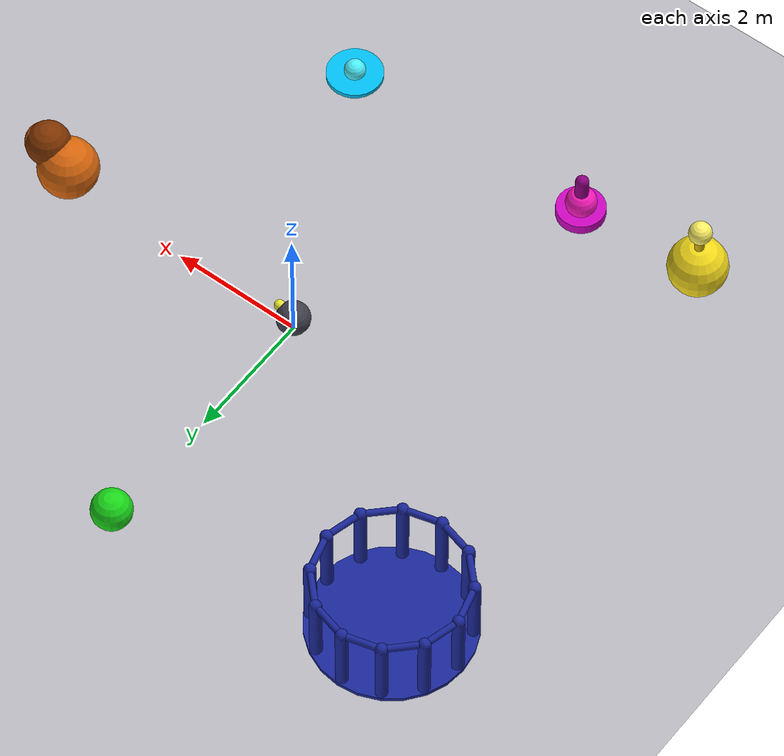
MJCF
<mujoco model="kg_world">
    <compiler angle="degree" inertiafromgeom="true"/>
    <option integrator="RK4" timestep="0.01"/>
    <visual>
        <global offwidth="1024" offheight="1024"/>
        <map fogend="30" fogstart="20"/>
        <quality shadowsize="2048"/>
    </visual>
    <asset>
        <texture builtin="gradient" height="100" rgb1=".45 .55 .65" rgb2=".15 .15 .2" type="skybox" width="100"/>
        <material name="MatPlane" reflectance="0" shininess="0.1" specular="0.1" rgba="0.72 0.72 0.75 1"/>
    </asset>
    <worldbody>
        <light castshadow="false" cutoff="100" diffuse="0.55 0.55 0.55" dir="-0.3 -0.3 -1" directional="true" pos="4 4 6" specular=".1 .1 .1"/>
        <light castshadow="false" cutoff="100" diffuse="0.25 0.25 0.25" dir="0.3 0.3 -1" directional="true" pos="-4 -4 6" specular="0 0 0"/>
        <geom condim="3" friction="1 .1 .1" material="MatPlane" name="floor" pos="0 0 0" size="8 8 0.125" type="plane"/>

        <!-- Agent: velocity-controlled ball with a 4-camera panoramic rig -->
        <body name="agent" pos="0 0 0.25">
            <joint name="agent_x" type="slide" axis="1 0 0" range="-7.5 7.5" damping="2" limited="true"/>
            <joint name="agent_y" type="slide" axis="0 1 0" range="-7.5 7.5" damping="2" limited="true"/>
            <joint name="agent_yaw" type="hinge" axis="0 0 1" damping="0.5" limited="false"/>
            <geom name="agent_ball" type="sphere" size="0.25" rgba="0.25 0.25 0.3 1" density="200"/>
            <geom name="agent_nose" type="sphere" size="0.08" pos="0.24 0 0.1" rgba="0.9 0.9 0.2 1" contype="0" conaffinity="0"/>
            <camera name="cam_front" pos="0.1 0 0.9"  fovy="90" xyaxes="0 -1 0 0.259 0 0.966"/>
            <camera name="cam_left"  pos="0 0.1 0.9"  fovy="90" xyaxes="1 0 0 0 0.259 0.966"/>
            <camera name="cam_back"  pos="-0.1 0 0.9" fovy="90" xyaxes="0 1 0 -0.259 0 0.966"/>
            <camera name="cam_right" pos="0 -0.1 0.9" fovy="90" xyaxes="-1 0 0 0 -0.259 0.966"/>
        </body>

        <!-- Lion: orange-red sphere cluster; repositioned at reset -->
        <body name="lion" pos="4 0 0">
            <geom name="lion_body" type="sphere" size="0.45" pos="0 0 0.45" rgba="0.85 0.4 0.05 1" contype="0" conaffinity="0"/>
            <geom name="lion_head" type="sphere" size="0.28" pos="0.42 0 0.72" rgba="0.75 0.3 0.0 1" contype="0" conaffinity="0"/>
            <geom name="lion_mane" type="sphere" size="0.33" pos="0.34 0 0.74" rgba="0.5 0.2 0.0 1" contype="0" conaffinity="0"/>
        </body>

        <!-- Food: bright green sphere; repositioned at reset -->
        <body name="food" pos="0 4 0">
            <geom name="food_item" type="sphere" size="0.3" pos="0 0 0.3" rgba="0.1 0.85 0.1 1" contype="0" conaffinity="0"/>
        </body>

        <body name="receiver" pos="-4 -4 0">
            <geom name="receiver_body"   type="sphere"  size="0.44"      pos="0 0 0.44" rgba="0.95 0.85 0.10 1" contype="0" conaffinity="0"/>
            <geom name="receiver_mast"   type="capsule" size="0.07 0.14" pos="0 0 0.98" rgba="0.85 0.70 0.05 1" contype="0" conaffinity="0"/>
            <geom name="receiver_beacon" type="sphere"  size="0.17"      pos="0 0 1.22" rgba="1.0 0.95 0.40 1" contype="0" conaffinity="0"/>
        </body>

        <!-- Water: cyan low cylinder with a bright center; repositioned at reset.
             Parked far below the floor when the env runs with resources=False. -->
        <body name="water" pos="2 -4 0">
            <geom name="water_pool" type="cylinder" size="0.42 0.035" pos="0 0 0.035" rgba="0.0 0.75 0.95 1" contype="0" conaffinity="0"/>
            <geom name="water_center" type="sphere" size="0.16" pos="0 0 0.12" rgba="0.3 0.95 1.0 1" contype="0" conaffinity="0"/>
        </body>

        <!-- Poison: magenta hazard made visually distinct from all resources -->
        <body name="poison" pos="-2 -4 0">
            <geom name="poison_base" type="cylinder" size="0.36 0.08" pos="0 0 0.08" rgba="0.8 0.02 0.75 1" contype="0" conaffinity="0"/>
            <geom name="poison_core" type="sphere" size="0.23" pos="0 0 0.27" rgba="1.0 0.1 0.75 1" contype="0" conaffinity="0"/>
            <geom name="poison_tip" type="capsule" size="0.10 0.18" pos="0 0 0.56" rgba="0.55 0.0 0.5 1" contype="0" conaffinity="0"/>
        </body>

        <!-- Cage: ring of 12 blue bars + top rim + base disc; repositioned at reset -->
        <body name="cage" pos="-4 3 0">
            <geom name="cage_base" type="cylinder" size="1.2 0.03" pos="0 0 0.03" rgba="0.1 0.15 0.6 1" contype="0" conaffinity="0"/>
            <geom name="cage_bar_0"  type="capsule" fromto="1.1 0 0.05 1.1 0 1.15"           size="0.09" rgba="0.1 0.15 0.6 1" contype="0" conaffinity="0"/>
            <geom name="cage_bar_1"  type="capsule" fromto="0.9526 0.55 0.05 0.9526 0.55 1.15"   size="0.09" rgba="0.1 0.15 0.6 1" contype="0" conaffinity="0"/>
            <geom name="cage_bar_2"  type="capsule" fromto="0.55 0.9526 0.05 0.55 0.9526 1.15"   size="0.09" rgba="0.1 0.15 0.6 1" contype="0" conaffinity="0"/>
            <geom name="cage_bar_3"  type="capsule" fromto="0 1.1 0.05 0 1.1 1.15"           size="0.09" rgba="0.1 0.15 0.6 1" contype="0" conaffinity="0"/>
            <geom name="cage_bar_4"  type="capsule" fromto="-0.55 0.9526 0.05 -0.55 0.9526 1.15" size="0.09" rgba="0.1 0.15 0.6 1" contype="0" conaffinity="0"/>
            <geom name="cage_bar_5"  type="capsule" fromto="-0.9526 0.55 0.05 -0.9526 0.55 1.15" size="0.09" rgba="0.1 0.15 0.6 1" contype="0" conaffinity="0"/>
            <geom name="cage_bar_6"  type="capsule" fromto="-1.1 0 0.05 -1.1 0 1.15"         size="0.09" rgba="0.1 0.15 0.6 1" contype="0" conaffinity="0"/>
            <geom name="cage_bar_7"  type="capsule" fromto="-0.9526 -0.55 0.05 -0.9526 -0.55 1.15" size="0.09" rgba="0.1 0.15 0.6 1" contype="0" conaffinity="0"/>
            <geom name="cage_bar_8"  type="capsule" fromto="-0.55 -0.9526 0.05 -0.55 -0.9526 1.15" size="0.09" rgba="0.1 0.15 0.6 1" contype="0" conaffinity="0"/>
            <geom name="cage_bar_9"  type="capsule" fromto="0 -1.1 0.05 0 -1.1 1.15"         size="0.09" rgba="0.1 0.15 0.6 1" contype="0" conaffinity="0"/>
            <geom name="cage_bar_10" type="capsule" fromto="0.55 -0.9526 0.05 0.55 -0.9526 1.15" size="0.09" rgba="0.1 0.15 0.6 1" contype="0" conaffinity="0"/>
            <geom name="cage_bar_11" type="capsule" fromto="0.9526 -0.55 0.05 0.9526 -0.55 1.15" size="0.09" rgba="0.1 0.15 0.6 1" contype="0" conaffinity="0"/>
            <geom name="cage_rim_0"  type="capsule" fromto="1.1 0 1.15 0.9526 0.55 1.15"         size="0.05" rgba="0.1 0.15 0.6 1" contype="0" conaffinity="0"/>
            <geom name="cage_rim_1"  type="capsule" fromto="0.9526 0.55 1.15 0.55 0.9526 1.15"   size="0.05" rgba="0.1 0.15 0.6 1" contype="0" conaffinity="0"/>
            <geom name="cage_rim_2"  type="capsule" fromto="0.55 0.9526 1.15 0 1.1 1.15"         size="0.05" rgba="0.1 0.15 0.6 1" contype="0" conaffinity="0"/>
            <geom name="cage_rim_3"  type="capsule" fromto="0 1.1 1.15 -0.55 0.9526 1.15"        size="0.05" rgba="0.1 0.15 0.6 1" contype="0" conaffinity="0"/>
            <geom name="cage_rim_4"  type="capsule" fromto="-0.55 0.9526 1.15 -0.9526 0.55 1.15" size="0.05" rgba="0.1 0.15 0.6 1" contype="0" conaffinity="0"/>
            <geom name="cage_rim_5"  type="capsule" fromto="-0.9526 0.55 1.15 -1.1 0 1.15"       size="0.05" rgba="0.1 0.15 0.6 1" contype="0" conaffinity="0"/>
            <geom name="cage_rim_6"  type="capsule" fromto="-1.1 0 1.15 -0.9526 -0.55 1.15"      size="0.05" rgba="0.1 0.15 0.6 1" contype="0" conaffinity="0"/>
            <geom name="cage_rim_7"  type="capsule" fromto="-0.9526 -0.55 1.15 -0.55 -0.9526 1.15" size="0.05" rgba="0.1 0.15 0.6 1" contype="0" conaffinity="0"/>
            <geom name="cage_rim_8"  type="capsule" fromto="-0.55 -0.9526 1.15 0 -1.1 1.15"      size="0.05" rgba="0.1 0.15 0.6 1" contype="0" conaffinity="0"/>
            <geom name="cage_rim_9"  type="capsule" fromto="0 -1.1 1.15 0.55 -0.9526 1.15"       size="0.05" rgba="0.1 0.15 0.6 1" contype="0" conaffinity="0"/>
            <geom name="cage_rim_10" type="capsule" fromto="0.55 -0.9526 1.15 0.9526 -0.55 1.15" size="0.05" rgba="0.1 0.15 0.6 1" contype="0" conaffinity="0"/>
            <geom name="cage_rim_11" type="capsule" fromto="0.9526 -0.55 1.15 1.1 0 1.15"        size="0.05" rgba="0.1 0.15 0.6 1" contype="0" conaffinity="0"/>
        </body>
    </worldbody>
    <actuator>
        <velocity name="vel_x"   joint="agent_x"   kv="50" ctrlrange="-2.5 2.5"/>
        <velocity name="vel_y"   joint="agent_y"   kv="50" ctrlrange="-2.5 2.5"/>
        <velocity name="vel_yaw" joint="agent_yaw" kv="5"  ctrlrange="-3 3"/>
    </actuator>
</mujoco>
